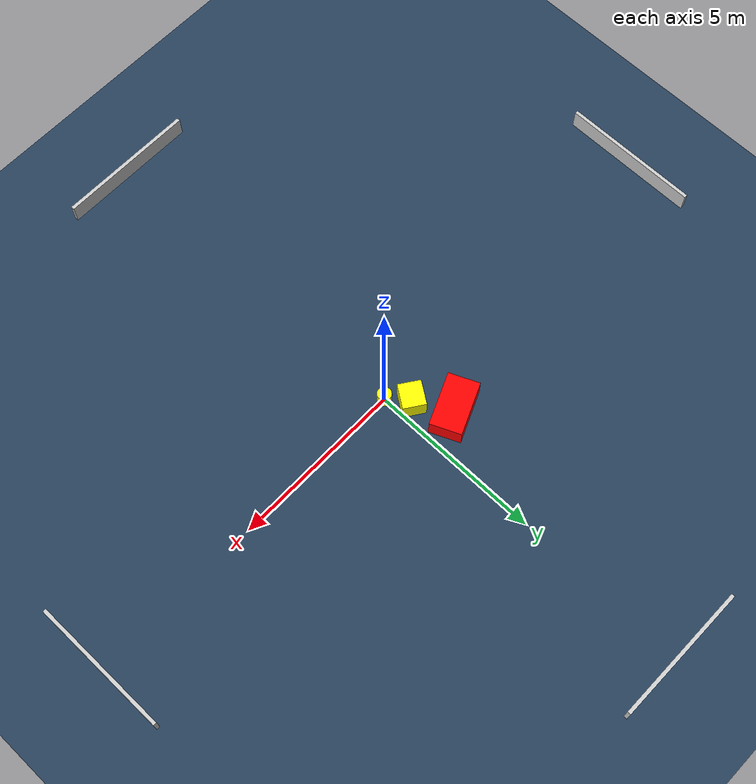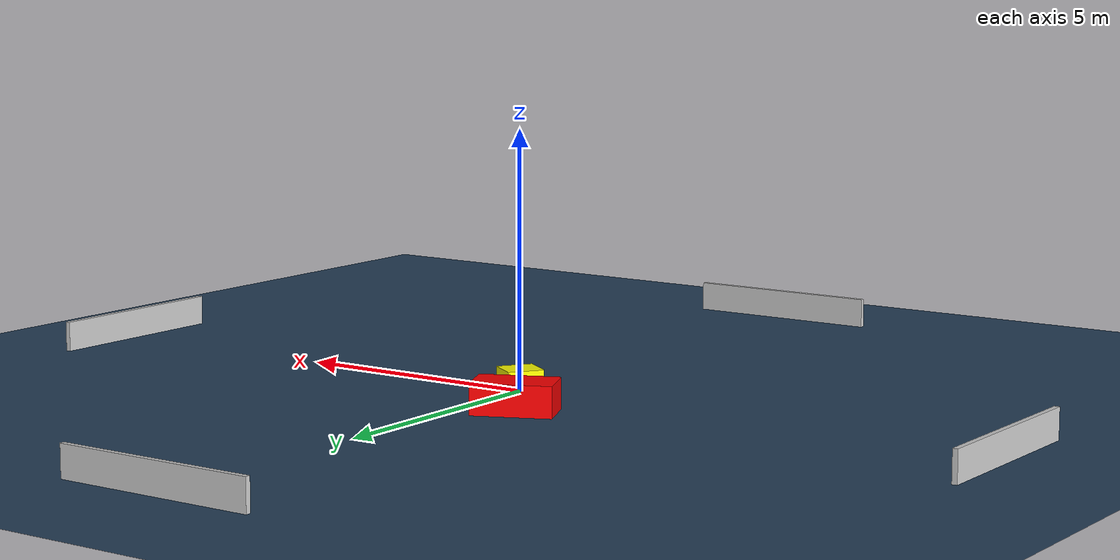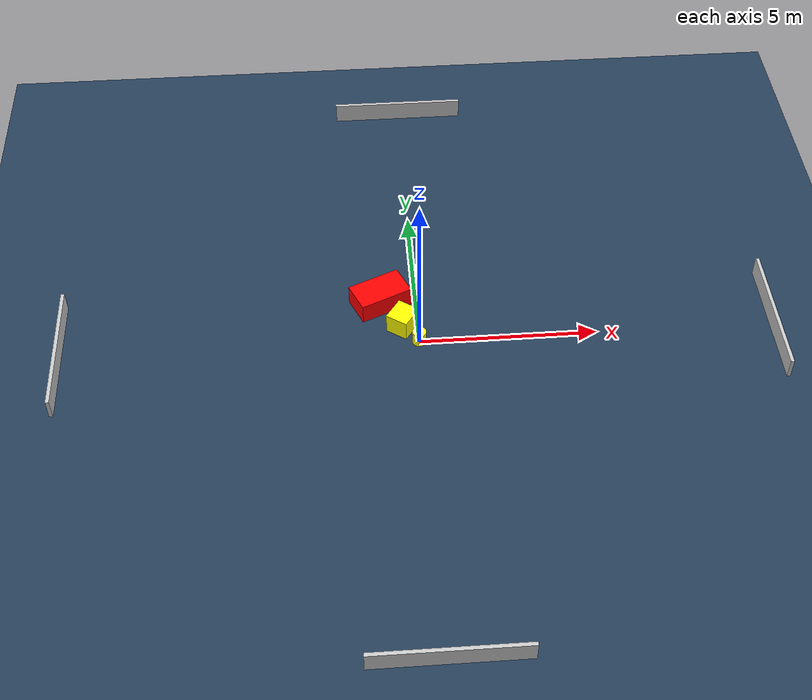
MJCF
<?xml version="1.0" ?>
<mujoco model="generated_environment">
  <option timestep="0.01" integrator="RK4" cone="elliptic"/>
  <default>
    <geom density="1"/>
  </default>
  <asset>
    <texture builtin="gradient" height="3072" name="skybox" rgb1="0.3 0.5 0.7" rgb2="0 0 0" type="skybox" width="512"/>
    <texture builtin="checker" height="300" name="groundplane" rgb1="0.2 0.3 0.4" rgb2="0.1 0.2 0.3" type="2d" width="300"/>
    <material name="groundplane" reflectance="0.2" texrepeat="5 5" texture="groundplane"/>
  </asset>
  <worldbody>
    <light dir="0 0 -1" directional="true" pos="0 0 1.5"/>
    <geom condim="3" friction="0.5 0.005 0.001" material="groundplane" name="floor" pos="0 0 0" size="0 0 0.05" type="plane"/>
    <body name="walls">
      <geom name="wall_1" condim="4" pos="-10.0 0.0 0.3" rgba="0.800000011920929 0.800000011920929 0.800000011920929 1.0" size="0.05 2.0 0.3" type="box"/>
      <geom name="wall_2" condim="4" pos="10.0 0.0 0.3" rgba="0.800000011920929 0.800000011920929 0.800000011920929 1.0" size="0.05 2.0 0.3" type="box"/>
      <geom name="wall_3" condim="4" pos="0.0 -10.0 0.3" rgba="0.800000011920929 0.800000011920929 0.800000011920929 1.0" size="2.0 0.05 0.3" type="box"/>
      <geom name="wall_4" condim="4" pos="0.0 10.0 0.3" rgba="0.800000011920929 0.800000011920929 0.800000011920929 1.0" size="2.0 0.05 0.3" type="box"/>
    </body>
    <body name="robot">
      <joint name="joint_x" type="slide" pos="0 0 0" axis="1 0 0"/>
      <joint name="joint_y" type="slide" pos="0 0 0" axis="0 1 0"/>
      <geom name="robot" type="cylinder" pos="0.0 0.0 0.2" size="0.2 0.2 0.0" mass="5.0" friction="1.0 0.005 0.0001" condim="4" rgba="1.0 1.0 0.0 1.0"/>
    </body>
    <body name="obstacle_1_movable">
      <geom name="obstacle_1_movable" condim="4" pos="-0.426072637934116 0.5870947037555567 0.3" euler="0 0 235.54915848059082" friction="0.0 0.005 0.001" rgba="1.0 1.0 0.0 1.0" size="0.3550972289373 0.3257835601998116 0.3" type="box" mass="0.1"/>
      <joint type="free"/>
    </body>
    <body name="obstacle_2_static">
      <geom name="obstacle_2_static" condim="4" pos="-1.0140688596429348 1.5709299126300553 0.3" euler="0 0 23.926727561571937" friction="0.0 0.005 0.001" rgba="1.0 0.0 0.0 1.0" size="0.7711206179511574 0.45107244302021005 0.3" type="box"/>
    </body>
  </worldbody>
  <actuator>
    <motor name="actuator_x" joint="joint_x" gear="1" ctrlrange="-1 1"/>
    <motor name="actuator_y" joint="joint_y" gear="1" ctrlrange="-1 1"/>
  </actuator>
</mujoco>
